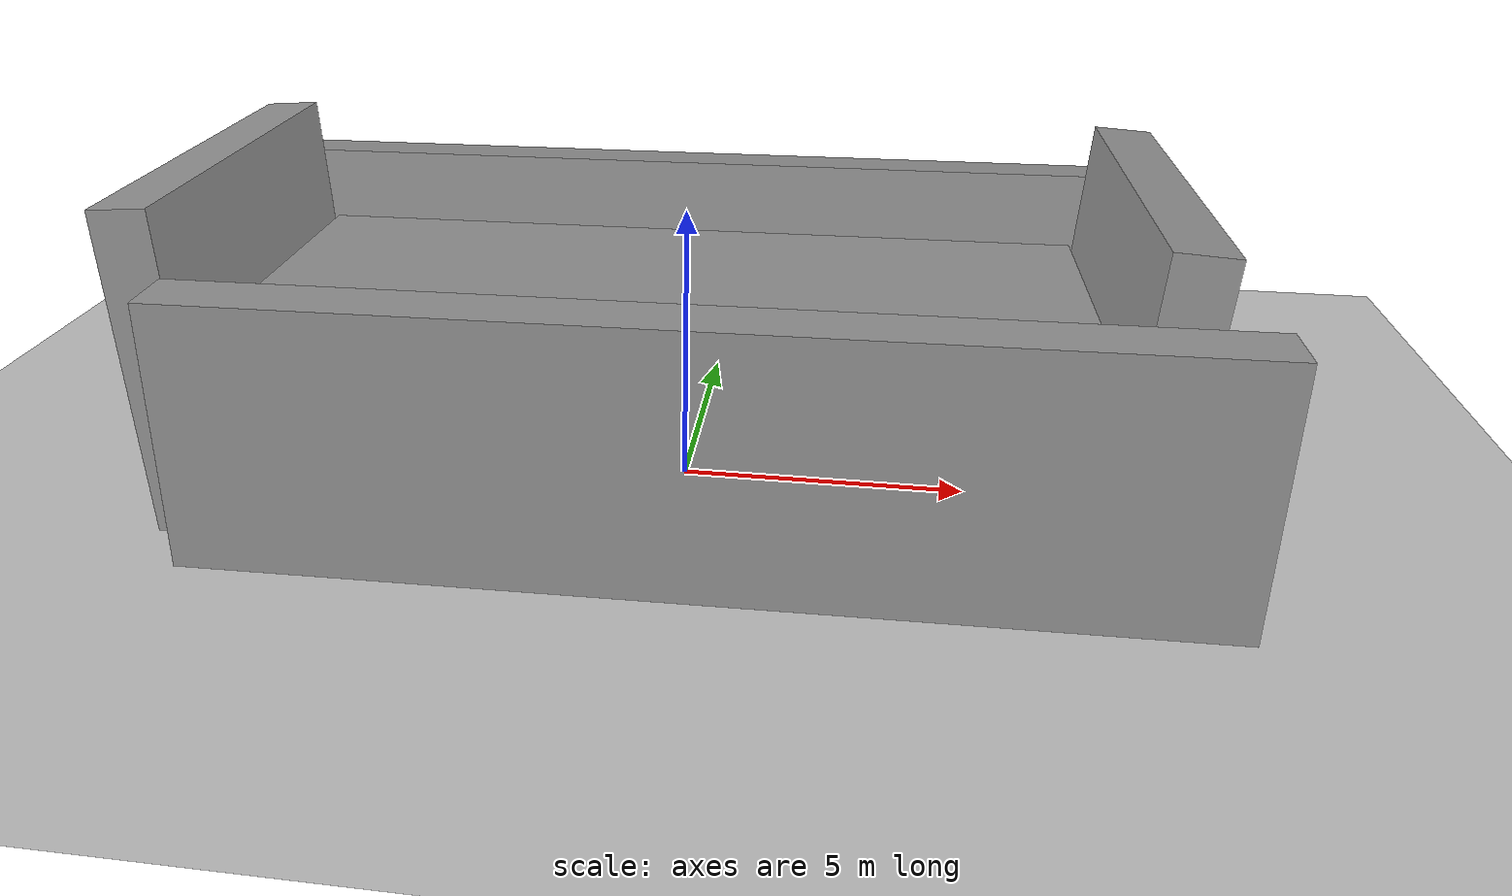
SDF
<sdf version="1.7">
 <world name="default">
  <light name="sun" type="directional">
   <pose>0 0 10 0 -0 0</pose>
   <diffuse>0.8 0.8 0.8 1</diffuse>
   <specular>0.2 0.2 0.2 1</specular>
   <attenuation>
    <range>1000</range>
    <constant>0.9</constant>
    <linear>0.01</linear>
    <quadratic>0.001</quadratic>
   </attenuation>
   <direction>-0.5 0.1 -0.9</direction>
   <spot><inner_angle>0</inner_angle><outer_angle>0</outer_angle><falloff>0</falloff></spot>
  </light>
  <model name="ground_plane">
   <static>1</static>
   <link name="link">
    <collision name="collision">
     <geometry><plane><normal>0 0 1</normal><size>100 100</size></plane></geometry>
     <surface><friction><ode><mu>100</mu><mu2>50</mu2></ode></friction></surface>
    </collision>
    <visual name="visual">
     <cast_shadows>0</cast_shadows>
     <geometry><plane><normal>0 0 1</normal><size>100 100</size></plane></geometry>
     <material>
      <script><uri>file://media/materials/scripts/gazebo.material</uri><name>Gazebo/Grey</name></script>
     </material>
    </visual>
   </link>
  </model>
  <gravity>0 0 -9.8</gravity>
  <magnetic_field>6e-06 2.3e-05 -4.2e-05</magnetic_field>
  <atmosphere type="adiabatic"/>
  <physics type="ode">
   <max_step_size>0.001</max_step_size>
   <real_time_factor>1</real_time_factor>
   <real_time_update_rate>1000</real_time_update_rate>
  </physics>
  <scene><ambient>0.4 0.4 0.4 1</ambient><background>0.7 0.7 0.7 1</background><shadows>1</shadows></scene>
  <spherical_coordinates>
   <surface_model>EARTH_WGS84</surface_model>
   <latitude_deg>0</latitude_deg>
   <longitude_deg>0</longitude_deg>
   <elevation>0</elevation>
   <heading_deg>0</heading_deg>
  </spherical_coordinates>
  <model name="A_H">
   <static>1</static>
   <link name="link">
    <collision name="collision">
     <geometry><plane><normal>0 0 1</normal><size>0.8 0.8</size></plane></geometry>
     <surface><friction><ode><mu>100</mu><mu2>50</mu2></ode></friction></surface>
    </collision>
    <visual name="visual">
     <cast_shadows>0</cast_shadows>
     <geometry><plane><normal>0 0 1</normal><size>2.828 2.828</size></plane></geometry>
     <material>
      <script>
       <uri>model://A_H/materials/scripts</uri>
       <uri>model://A_H/materials/textures/</uri>
       <name>A_H/A_H</name>
      </script>
     </material>
    </visual>
   </link>
   <pose>0 0 0.02 0 0 -1.5708</pose>
  </model>
  <model name="voyage_0">
   <static>1</static>
   <link name="link">
    <collision name="collision">
     <geometry><plane><normal>0 0 1</normal><size>0.8 0.8</size></plane></geometry>
     <surface><friction><ode><mu>100</mu><mu2>50</mu2></ode></friction></surface>
    </collision>
    <visual name="visual">
     <cast_shadows>0</cast_shadows>
     <geometry><plane><normal>0 0 1</normal><size>0.8 0.8</size></plane></geometry>
     <material>
      <script>
       <uri>model://voyage/materials/scripts</uri>
       <uri>model://voyage/materials/textures/</uri>
       <name>voyage/voyage</name>
      </script>
     </material>
    </visual>
   </link>
   <pose>3.3 0 0.02 0 0 -1.5708</pose>
  </model>
  <model name="voyage_1">
   <static>1</static>
   <link name="link">
    <collision name="collision">
     <geometry><plane><normal>0 0 1</normal><size>0.8 0.8</size></plane></geometry>
     <surface><friction><ode><mu>100</mu><mu2>50</mu2></ode></friction></surface>
    </collision>
    <visual name="visual">
     <cast_shadows>0</cast_shadows>
     <geometry><plane><normal>0 0 1</normal><size>0.8 0.8</size></plane></geometry>
     <material>
      <script>
       <uri>model://voyage/materials/scripts</uri>
       <uri>model://voyage/materials/textures/</uri>
       <name>voyage/voyage</name>
      </script>
     </material>
    </visual>
   </link>
   <pose>0 2.2 0.02 0 0 -1.5708</pose>
  </model>
  <model name="voyage_2">
   <static>1</static>
   <link name="link">
    <collision name="collision">
     <geometry><plane><normal>0 0 1</normal><size>0.8 0.8</size></plane></geometry>
     <surface><friction><ode><mu>100</mu><mu2>50</mu2></ode></friction></surface>
    </collision>
    <visual name="visual">
     <cast_shadows>0</cast_shadows>
     <geometry><plane><normal>0 0 1</normal><size>0.8 0.8</size></plane></geometry>
     <material>
      <script>
       <uri>model://voyage/materials/scripts</uri>
       <uri>model://voyage/materials/textures/</uri>
       <name>voyage/voyage</name>
      </script>
     </material>
    </visual>
   </link>
   <pose>-3.3 0 0.02 0 0 -1.5708</pose>
  </model>
  <model name="voyage_3">
   <static>1</static>
   <link name="link">
    <collision name="collision">
     <geometry><plane><normal>0 0 1</normal><size>0.8 0.8</size></plane></geometry>
     <surface><friction><ode><mu>100</mu><mu2>50</mu2></ode></friction></surface>
    </collision>
    <visual name="visual">
     <cast_shadows>0</cast_shadows>
     <geometry><plane><normal>0 0 1</normal><size>0.8 0.8</size></plane></geometry>
     <material>
      <script>
       <uri>model://voyage/materials/scripts</uri>
       <uri>model://voyage/materials/textures/</uri>
       <name>voyage/voyage</name>
      </script>
     </material>
    </visual>
   </link>
   <pose>0 -2.2 0.02 0 0 -1.5708</pose>
  </model>
  <model name="unit_box">
   <static>1</static>
   <pose>2.50335 -1.30057 1.2 0 -0 0</pose>
   <link name="link">
    <inertial>
     <mass>1</mass>
     <inertia>
      <ixx>0.166667</ixx>
      <ixy>0</ixy>
      <ixz>0</ixz>
      <iyy>0.166667</iyy>
      <iyz>0</iyz>
      <izz>0.166667</izz>
     </inertia>
    </inertial>
    <collision name="collision"><geometry><box><size>0.6 0.6 2.4</size></box></geometry></collision>
    <visual name="visual">
     <geometry><box><size>0.6 0.6 2.4</size></box></geometry>
     <material>
      <script><name>Gazebo/Grey</name><uri>file://media/materials/scripts/gazebo.material</uri></script>
     </material>
    </visual>
   </link>
  </model>
  <model name="Wall_0">
   <pose>-4.52947 0 0 0 -0 0</pose>
   <link name="Wall_0">
    <collision name="Wall_0_Collision">
     <geometry><box><size>6 0.2 3</size></box></geometry>
     <pose>0 0 1.5 0 -0 0</pose>
    </collision>
    <visual name="Wall_0_Visual">
     <transparency>0.9</transparency>
     <pose>0 0 1.5 0 -0 0</pose>
     <geometry><box><size>6 0.2 3</size></box></geometry>
     <material>
      <script><uri>file://media/materials/scripts/gazebo.material</uri><name>Gazebo/Grey</name></script>
      <ambient>1 1 1 1</ambient>
     </material>
     <meta><layer>0</layer></meta>
    </visual>
    <pose>0 0 0 0 -0 1.5708</pose>
   </link>
   <static>1</static>
  </model>
  <model name="Wall_0_0">
   <pose>4.50879 0 0 0 -0 0</pose>
   <link name="Wall_0">
    <collision name="Wall_0_Collision">
     <geometry><box><size>6 0.2 3</size></box></geometry>
     <pose>0 0 1.5 0 -0 0</pose>
    </collision>
    <visual name="Wall_0_Visual">
     <transparency>0.9</transparency>
     <pose>0 0 1.5 0 -0 0</pose>
     <geometry><box><size>6 0.2 3</size></box></geometry>
     <material>
      <script><uri>file://media/materials/scripts/gazebo.material</uri><name>Gazebo/Grey</name></script>
      <ambient>1 1 1 1</ambient>
     </material>
     <meta><layer>0</layer></meta>
    </visual>
    <pose>0 0 0 0 -0 1.5708</pose>
   </link>
   <static>1</static>
  </model>
  <model name="Wall_0_1">
   <pose>0.047552 3.1 0 0 -0 1.57079</pose>
   <link name="Wall_0">
    <collision name="Wall_0_Collision">
     <geometry><box><size>9.4 0.2 3</size></box></geometry>
     <pose>0 0 1.5 0 -0 0</pose>
    </collision>
    <visual name="Wall_0_Visual">
     <transparency>0.9</transparency>
     <pose>0 0 1.5 0 -0 0</pose>
     <geometry><box><size>9.4 0.2 3</size></box></geometry>
     <material>
      <script><uri>file://media/materials/scripts/gazebo.material</uri><name>Gazebo/Grey</name></script>
      <ambient>1 1 1 1</ambient>
     </material>
     <meta><layer>0</layer></meta>
    </visual>
    <pose>0 0 0 0 -0 1.5708</pose>
   </link>
   <static>1</static>
  </model>
  <model name="Wall_0_2">
   <pose>-0.026363 -3.1 0 0 -0 1.57079</pose>
   <link name="Wall_0">
    <collision name="Wall_0_Collision">
     <geometry><box><size>9.4 0.2 3</size></box></geometry>
     <pose>0 0 1.5 0 -0 0</pose>
    </collision>
    <visual name="Wall_0_Visual">
     <transparency>0.9</transparency>
     <pose>0 0 1.5 0 -0 0</pose>
     <geometry><box><size>9.4 0.2 3</size></box></geometry>
     <material>
      <script><uri>file://media/materials/scripts/gazebo.material</uri><name>Gazebo/Grey</name></script>
      <ambient>1 1 1 1</ambient>
     </material>
     <meta><layer>0</layer></meta>
    </visual>
    <pose>0 0 0 0 -0 1.5708</pose>
   </link>
   <static>1</static>
  </model>
  <model name="unit_box_clone">
   <static>1</static>
   <pose>2.50893 1.31136 1.2 0 -0 0</pose>
   <link name="link">
    <inertial>
     <mass>1</mass>
     <inertia>
      <ixx>0.166667</ixx>
      <ixy>0</ixy>
      <ixz>0</ixz>
      <iyy>0.166667</iyy>
      <iyz>0</iyz>
      <izz>0.166667</izz>
     </inertia>
    </inertial>
    <collision name="collision"><geometry><box><size>0.6 0.6 2.4</size></box></geometry></collision>
    <visual name="visual">
     <geometry><box><size>0.6 0.6 2.4</size></box></geometry>
     <material>
      <script><name>Gazebo/Grey</name><uri>file://media/materials/scripts/gazebo.material</uri></script>
     </material>
    </visual>
   </link>
  </model>
  <model name="unit_box_clone_0">
   <static>1</static>
   <pose>-2.50251 1.29757 1.2 0 -0 0</pose>
   <link name="link">
    <inertial>
     <mass>1</mass>
     <inertia>
      <ixx>0.166667</ixx>
      <ixy>0</ixy>
      <ixz>0</ixz>
      <iyy>0.166667</iyy>
      <iyz>0</iyz>
      <izz>0.166667</izz>
     </inertia>
    </inertial>
    <collision name="collision"><geometry><box><size>0.6 0.6 2.4</size></box></geometry></collision>
    <visual name="visual">
     <geometry><box><size>0.6 0.6 2.4</size></box></geometry>
     <material>
      <script><name>Gazebo/Grey</name><uri>file://media/materials/scripts/gazebo.material</uri></script>
     </material>
    </visual>
   </link>
  </model>
  <model name="unit_box_0">
   <pose>-0.38994 0.399864 3.15187 -7e-06 -7e-06 0.019961</pose>
   <link name="link">
    <inertial>
     <mass>1</mass>
     <inertia>
      <ixx>0.166667</ixx>
      <ixy>0</ixy>
      <ixz>0</ixz>
      <iyy>0.166667</iyy>
      <iyz>0</iyz>
      <izz>0.166667</izz>
     </inertia>
    </inertial>
    <collision name="collision"><geometry><box><size>14.8844 7.52409 0.303721</size></box></geometry></collision>
    <visual name="visual">
     <geometry><box><size>14.8844 7.52409 0.303721</size></box></geometry>
     <material>
      <script><name>Gazebo/Grey</name><uri>file://media/materials/scripts/gazebo.material</uri></script>
     </material>
    </visual>
   </link>
  </model>
  <model name="unit_box_1">
   <pose>7.54703 0.494549 2.86776 -1.2e-05 0.070968 0.019174</pose>
   <link name="link">
    <inertial>
     <mass>1</mass>
     <inertia>
      <ixx>0.166667</ixx>
      <ixy>0</ixy>
      <ixz>0</ixz>
      <iyy>0.166667</iyy>
      <iyz>0</iyz>
      <izz>0.166667</izz>
     </inertia>
    </inertial>
    <collision name="collision"><geometry><box><size>1 7.24559 5.67899</size></box></geometry></collision>
    <visual name="visual">
     <geometry><box><size>1 7.24559 5.67899</size></box></geometry>
     <material>
      <script><name>Gazebo/Grey</name><uri>file://media/materials/scripts/gazebo.material</uri></script>
     </material>
    </visual>
   </link>
  </model>
  <model name="unit_box_1_clone">
   <pose>-8.32206 0.204745 2.8666 -4e-06 -0.067065 0.019959</pose>
   <link name="link">
    <inertial>
     <mass>1</mass>
     <inertia>
      <ixx>0.166667</ixx>
      <ixy>0</ixy>
      <ixz>0</ixz>
      <iyy>0.166667</iyy>
      <iyz>0</iyz>
      <izz>0.166667</izz>
     </inertia>
    </inertial>
    <collision name="collision"><geometry><box><size>1 7.24559 5.67899</size></box></geometry></collision>
    <visual name="visual">
     <geometry><box><size>1 7.24559 5.67899</size></box></geometry>
     <material>
      <script><name>Gazebo/Grey</name><uri>file://media/materials/scripts/gazebo.material</uri></script>
     </material>
    </visual>
   </link>
  </model>
  <model name="unit_cylinder">
   <pose>-6.11705 -1.2177 0.499997 3e-06 1e-06 -0</pose>
   <link name="link">
    <inertial>
     <mass>1</mass>
     <inertia><ixx>0.145833</ixx><ixy>0</ixy><ixz>0</ixz><iyy>0.145833</iyy><iyz>0</iyz><izz>0.125</izz></inertia>
    </inertial>
    <collision name="collision">
     <geometry><cylinder><radius>0.5</radius><length>1</length></cylinder></geometry>
    </collision>
    <visual name="visual">
     <geometry><cylinder><radius>0.5</radius><length>1</length></cylinder></geometry>
     <material>
      <script><name>Gazebo/Grey</name><uri>file://media/materials/scripts/gazebo.material</uri></script>
     </material>
    </visual>
   </link>
  </model>
  <model name="unit_box_2">
   <pose>-5.86539 1.71585 0.499996 5e-06 -3e-06 0</pose>
   <link name="link">
    <inertial>
     <mass>1</mass>
     <inertia>
      <ixx>0.166667</ixx>
      <ixy>0</ixy>
      <ixz>0</ixz>
      <iyy>0.166667</iyy>
      <iyz>0</iyz>
      <izz>0.166667</izz>
     </inertia>
    </inertial>
    <collision name="collision"><geometry><box><size>1 1 1</size></box></geometry></collision>
    <visual name="visual">
     <geometry><box><size>1 1 1</size></box></geometry>
     <material>
      <script><name>Gazebo/Grey</name><uri>file://media/materials/scripts/gazebo.material</uri></script>
     </material>
    </visual>
   </link>
  </model>
  <model name="unit_sphere">
   <pose>6.02755 0.108706 0.49999 0 -0 0</pose>
   <link name="link">
    <inertial>
     <mass>1</mass>
     <inertia><ixx>0.1</ixx><ixy>0</ixy><ixz>0</ixz><iyy>0.1</iyy><iyz>0</iyz><izz>0.1</izz></inertia>
    </inertial>
    <collision name="collision"><geometry><sphere><radius>0.5</radius></sphere></geometry></collision>
    <visual name="visual">
     <geometry><sphere><radius>0.5</radius></sphere></geometry>
     <material>
      <script><name>Gazebo/Grey</name><uri>file://media/materials/scripts/gazebo.material</uri></script>
     </material>
    </visual>
   </link>
  </model>
  <model name="unit_box_1_clone_0">
   <pose>0.670614 -3.82787 2.32219 -3e-06 0.020745 -1.55083</pose>
   <link name="link">
    <inertial>
     <mass>1</mass>
     <inertia>
      <ixx>0.166667</ixx>
      <ixy>0</ixy>
      <ixz>0</ixz>
      <iyy>0.166667</iyy>
      <iyz>0</iyz>
      <izz>0.166667</izz>
     </inertia>
    </inertial>
    <collision name="collision"><geometry><box><size>1 16.9251 4.62464</size></box></geometry></collision>
    <visual name="visual">
     <geometry><box><size>1 16.9251 4.62464</size></box></geometry>
     <material>
      <script><name>Gazebo/Grey</name><uri>file://media/materials/scripts/gazebo.material</uri></script>
     </material>
    </visual>
   </link>
  </model>
  <model name="unit_box_1_clone_0_clone">
   <pose>-0.659542 4.61863 2.33806 -0 -0.059747 -1.55082</pose>
   <link name="link">
    <inertial>
     <mass>1</mass>
     <inertia>
      <ixx>0.166667</ixx>
      <ixy>0</ixy>
      <ixz>0</ixz>
      <iyy>0.166667</iyy>
      <iyz>0</iyz>
      <izz>0.166667</izz>
     </inertia>
    </inertial>
    <collision name="collision"><geometry><box><size>1 16.9251 4.62464</size></box></geometry></collision>
    <visual name="visual">
     <geometry><box><size>1 16.9251 4.62464</size></box></geometry>
     <material>
      <script><name>Gazebo/Grey</name><uri>file://media/materials/scripts/gazebo.material</uri></script>
     </material>
    </visual>
   </link>
  </model>
 </world>
</sdf>
